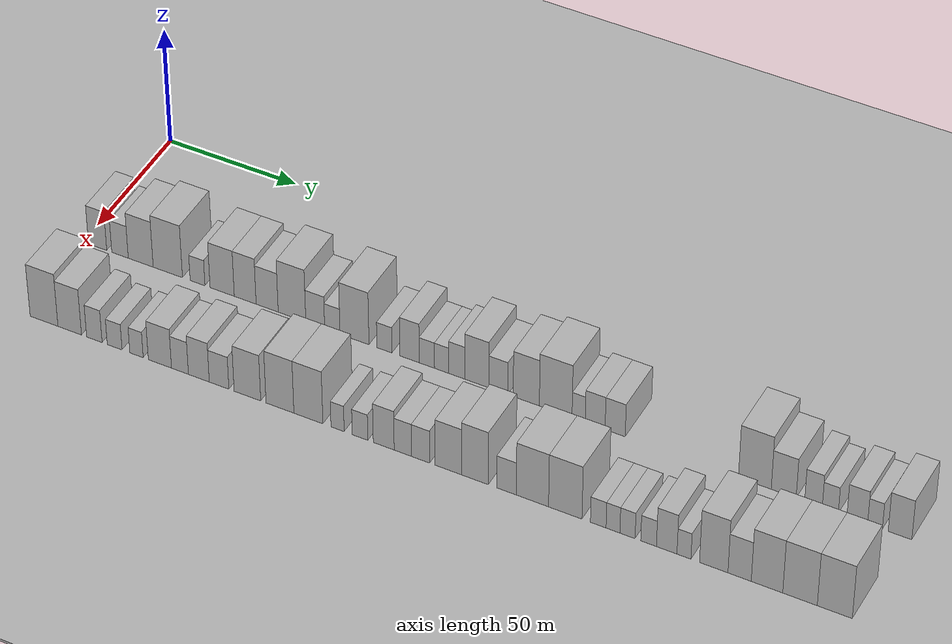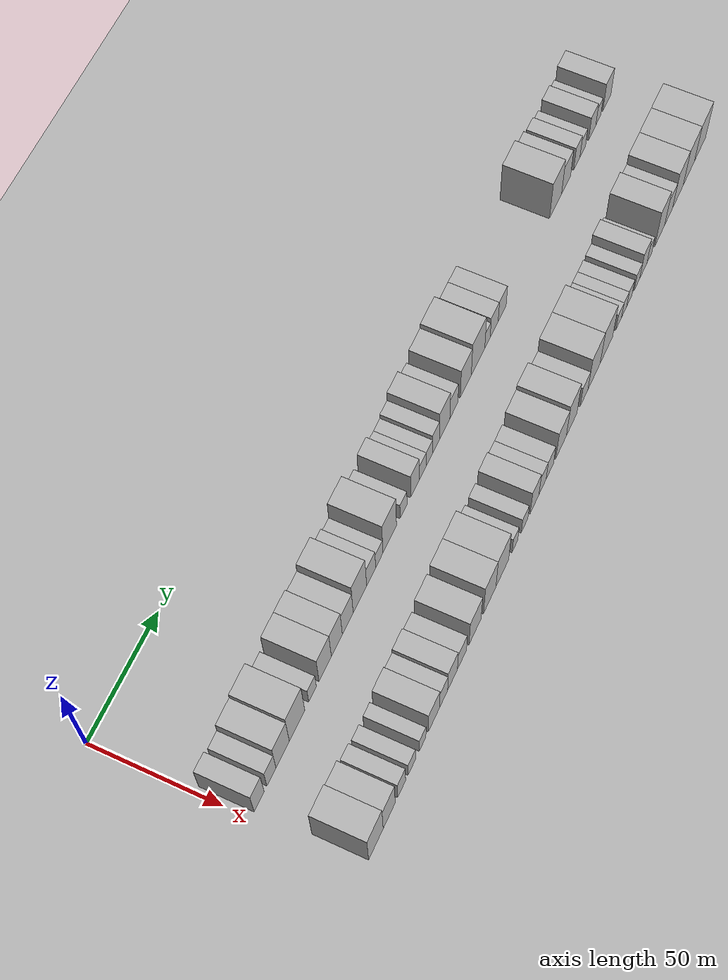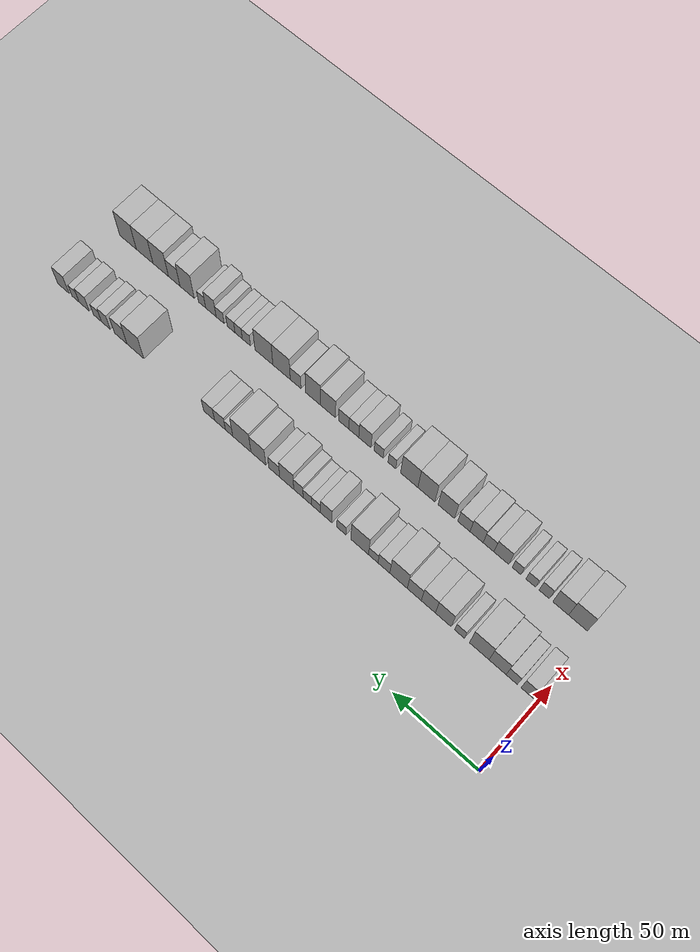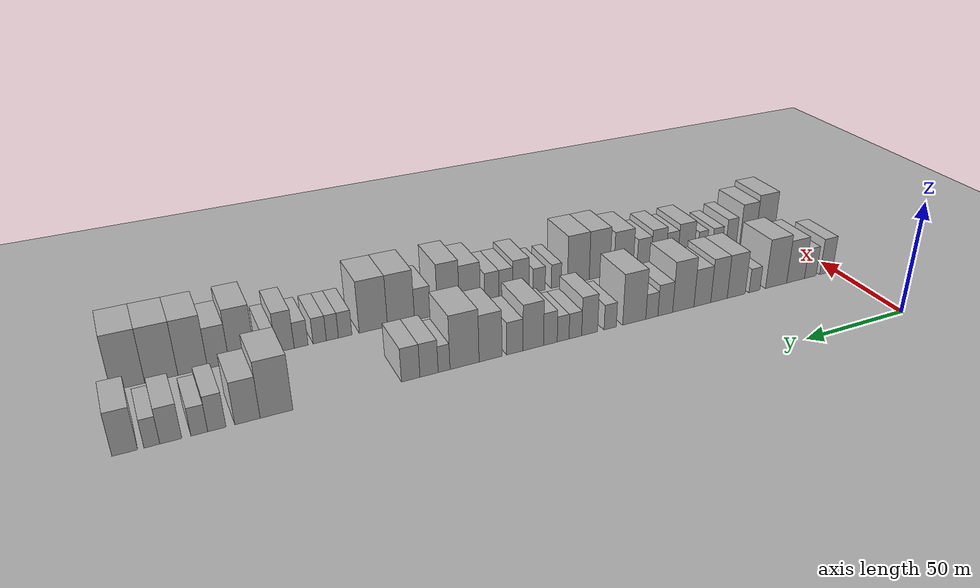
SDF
<sdf version="1.6">
 <world name="default">
  <include><name>ground_plane_1</name><uri>model://HANNAS_ground_plane</uri></include>
  <include>
   <name>ground_plane_2</name>
   <uri>model://HANNAS_ground_plane</uri>
   <pose>100 0 0  0 0 0</pose>
  </include>
  <model name="building_34">
   <static>1</static>
   <pose>50.0000 5.9675 0 0.000000 0.000000 0.000000</pose>
   <link name="link">
    <pose>0 0 9.00 0 0 0</pose>
    <collision name="collision"><geometry><box><size>20.0000 7.2417 18.0000</size></box></geometry></collision>
    <visual name="visual">
     <cast_shadows>0</cast_shadows>
     <geometry><box><size>20.0000 7.2417 18.0000</size></box></geometry>
     <material>
      <script>
       <uri>model://HANNAS_wall/materials/scripts</uri>
       <uri>model://HANNAS_wall/materials/textures</uri>
       <name>vrc/HANNAS_wall</name>
      </script>
     </material>
    </visual>
   </link>
  </model>
  <model name="building_35">
   <static>1</static>
   <pose>50.0000 14.8578 0 0.000000 0.000000 0.000000</pose>
   <link name="link">
    <pose>0 0 7.50 0 0 0</pose>
    <collision name="collision"><geometry><box><size>20.0000 6.5390 15.0000</size></box></geometry></collision>
    <visual name="visual">
     <cast_shadows>0</cast_shadows>
     <geometry><box><size>20.0000 6.5390 15.0000</size></box></geometry>
     <material>
      <script>
       <uri>model://HANNAS_wall/materials/scripts</uri>
       <uri>model://HANNAS_wall/materials/textures</uri>
       <name>vrc/HANNAS_wall</name>
      </script>
     </material>
    </visual>
   </link>
  </model>
  <model name="building_36">
   <static>1</static>
   <pose>50.0000 23.0570 0 0.000000 0.000000 0.000000</pose>
   <link name="link">
    <pose>0 0 10.50 0 0 0</pose>
    <collision name="collision"><geometry><box><size>20.0000 9.8593 21.0000</size></box></geometry></collision>
    <visual name="visual">
     <cast_shadows>0</cast_shadows>
     <geometry><box><size>20.0000 9.8593 21.0000</size></box></geometry>
     <material>
      <script>
       <uri>model://HANNAS_wall/materials/scripts</uri>
       <uri>model://HANNAS_wall/materials/textures</uri>
       <name>vrc/HANNAS_wall</name>
      </script>
     </material>
    </visual>
   </link>
  </model>
  <model name="building_37">
   <static>1</static>
   <pose>50.0000 33.7391 0 0.000000 0.000000 0.000000</pose>
   <link name="link">
    <pose>0 0 12.00 0 0 0</pose>
    <collision name="collision"><geometry><box><size>20.0000 11.5049 24.0000</size></box></geometry></collision>
    <visual name="visual">
     <cast_shadows>0</cast_shadows>
     <geometry><box><size>20.0000 11.5049 24.0000</size></box></geometry>
     <material>
      <script>
       <uri>model://HANNAS_wall/materials/scripts</uri>
       <uri>model://HANNAS_wall/materials/textures</uri>
       <name>vrc/HANNAS_wall</name>
      </script>
     </material>
    </visual>
   </link>
  </model>
  <model name="building_38">
   <static>1</static>
   <pose>50.0000 45.3837 0 0.000000 0.000000 0.000000</pose>
   <link name="link">
    <pose>0 0 6.00 0 0 0</pose>
    <collision name="collision"><geometry><box><size>20.0000 5.7844 12.0000</size></box></geometry></collision>
    <visual name="visual">
     <cast_shadows>0</cast_shadows>
     <geometry><box><size>20.0000 5.7844 12.0000</size></box></geometry>
     <material>
      <script>
       <uri>model://HANNAS_wall/materials/scripts</uri>
       <uri>model://HANNAS_wall/materials/textures</uri>
       <name>vrc/HANNAS_wall</name>
      </script>
     </material>
    </visual>
   </link>
  </model>
  <model name="building_39">
   <static>1</static>
   <pose>50.0000 54.9895 0 0.000000 0.000000 0.000000</pose>
   <link name="link">
    <pose>0 0 10.50 0 0 0</pose>
    <collision name="collision"><geometry><box><size>20.0000 9.4272 21.0000</size></box></geometry></collision>
    <visual name="visual">
     <cast_shadows>0</cast_shadows>
     <geometry><box><size>20.0000 9.4272 21.0000</size></box></geometry>
     <material>
      <script>
       <uri>model://HANNAS_wall/materials/scripts</uri>
       <uri>model://HANNAS_wall/materials/textures</uri>
       <name>vrc/HANNAS_wall</name>
      </script>
     </material>
    </visual>
   </link>
  </model>
  <model name="building_40">
   <static>1</static>
   <pose>50.0000 63.9344 0 0.000000 0.000000 0.000000</pose>
   <link name="link">
    <pose>0 0 10.50 0 0 0</pose>
    <collision name="collision"><geometry><box><size>20.0000 8.4624 21.0000</size></box></geometry></collision>
    <visual name="visual">
     <cast_shadows>0</cast_shadows>
     <geometry><box><size>20.0000 8.4624 21.0000</size></box></geometry>
     <material>
      <script>
       <uri>model://HANNAS_wall/materials/scripts</uri>
       <uri>model://HANNAS_wall/materials/textures</uri>
       <name>vrc/HANNAS_wall</name>
      </script>
     </material>
    </visual>
   </link>
  </model>
  <model name="building_41">
   <static>1</static>
   <pose>50.0000 72.4222 0 0.000000 0.000000 0.000000</pose>
   <link name="link">
    <pose>0 0 9.00 0 0 0</pose>
    <collision name="collision"><geometry><box><size>20.0000 8.5133 18.0000</size></box></geometry></collision>
    <visual name="visual">
     <cast_shadows>0</cast_shadows>
     <geometry><box><size>20.0000 8.5133 18.0000</size></box></geometry>
     <material>
      <script>
       <uri>model://HANNAS_wall/materials/scripts</uri>
       <uri>model://HANNAS_wall/materials/textures</uri>
       <name>vrc/HANNAS_wall</name>
      </script>
     </material>
    </visual>
   </link>
  </model>
  <model name="building_42">
   <static>1</static>
   <pose>50.0000 81.9835 0 0.000000 0.000000 0.000000</pose>
   <link name="link">
    <pose>0 0 12.00 0 0 0</pose>
    <collision name="collision"><geometry><box><size>20.0000 10.6092 24.0000</size></box></geometry></collision>
    <visual name="visual">
     <cast_shadows>0</cast_shadows>
     <geometry><box><size>20.0000 10.6092 24.0000</size></box></geometry>
     <material>
      <script>
       <uri>model://HANNAS_wall/materials/scripts</uri>
       <uri>model://HANNAS_wall/materials/textures</uri>
       <name>vrc/HANNAS_wall</name>
      </script>
     </material>
    </visual>
   </link>
  </model>
  <model name="building_43">
   <static>1</static>
   <pose>50.0000 90.8949 0 0.000000 0.000000 0.000000</pose>
   <link name="link">
    <pose>0 0 7.50 0 0 0</pose>
    <collision name="collision"><geometry><box><size>20.0000 7.2136 15.0000</size></box></geometry></collision>
    <visual name="visual">
     <cast_shadows>0</cast_shadows>
     <geometry><box><size>20.0000 7.2136 15.0000</size></box></geometry>
     <material>
      <script>
       <uri>model://HANNAS_wall/materials/scripts</uri>
       <uri>model://HANNAS_wall/materials/textures</uri>
       <name>vrc/HANNAS_wall</name>
      </script>
     </material>
    </visual>
   </link>
  </model>
  <model name="building_44">
   <static>1</static>
   <pose>50.0000 97.4347 0 0.000000 0.000000 0.000000</pose>
   <link name="link">
    <pose>0 0 6.00 0 0 0</pose>
    <collision name="collision"><geometry><box><size>20.0000 5.8660 12.0000</size></box></geometry></collision>
    <visual name="visual">
     <cast_shadows>0</cast_shadows>
     <geometry><box><size>20.0000 5.8660 12.0000</size></box></geometry>
     <material>
      <script>
       <uri>model://HANNAS_wall/materials/scripts</uri>
       <uri>model://HANNAS_wall/materials/textures</uri>
       <name>vrc/HANNAS_wall</name>
      </script>
     </material>
    </visual>
   </link>
  </model>
  <model name="building_45">
   <static>1</static>
   <pose>50.0000 105.8738 0 0.000000 0.000000 0.000000</pose>
   <link name="link">
    <pose>0 0 12.00 0 0 0</pose>
    <collision name="collision"><geometry><box><size>20.0000 11.0121 24.0000</size></box></geometry></collision>
    <visual name="visual">
     <cast_shadows>0</cast_shadows>
     <geometry><box><size>20.0000 11.0121 24.0000</size></box></geometry>
     <material>
      <script>
       <uri>model://HANNAS_wall/materials/scripts</uri>
       <uri>model://HANNAS_wall/materials/textures</uri>
       <name>vrc/HANNAS_wall</name>
      </script>
     </material>
    </visual>
   </link>
  </model>
  <model name="building_46">
   <static>1</static>
   <pose>50.0000 117.2272 0 0.000000 0.000000 0.000000</pose>
   <link name="link">
    <pose>0 0 6.00 0 0 0</pose>
    <collision name="collision"><geometry><box><size>20.0000 5.6948 12.0000</size></box></geometry></collision>
    <visual name="visual">
     <cast_shadows>0</cast_shadows>
     <geometry><box><size>20.0000 5.6948 12.0000</size></box></geometry>
     <material>
      <script>
       <uri>model://HANNAS_wall/materials/scripts</uri>
       <uri>model://HANNAS_wall/materials/textures</uri>
       <name>vrc/HANNAS_wall</name>
      </script>
     </material>
    </visual>
   </link>
  </model>
  <model name="building_47">
   <static>1</static>
   <pose>50.0000 126.7138 0 0.000000 0.000000 0.000000</pose>
   <link name="link">
    <pose>0 0 9.00 0 0 0</pose>
    <collision name="collision"><geometry><box><size>20.0000 7.2783 18.0000</size></box></geometry></collision>
    <visual name="visual">
     <cast_shadows>0</cast_shadows>
     <geometry><box><size>20.0000 7.2783 18.0000</size></box></geometry>
     <material>
      <script>
       <uri>model://HANNAS_wall/materials/scripts</uri>
       <uri>model://HANNAS_wall/materials/textures</uri>
       <name>vrc/HANNAS_wall</name>
      </script>
     </material>
    </visual>
   </link>
  </model>
  <model name="building_48">
   <static>1</static>
   <pose>50.0000 133.2142 0 0.000000 0.000000 0.000000</pose>
   <link name="link">
    <pose>0 0 6.00 0 0 0</pose>
    <collision name="collision"><geometry><box><size>20.0000 5.7225 12.0000</size></box></geometry></collision>
    <visual name="visual">
     <cast_shadows>0</cast_shadows>
     <geometry><box><size>20.0000 5.7225 12.0000</size></box></geometry>
     <material>
      <script>
       <uri>model://HANNAS_wall/materials/scripts</uri>
       <uri>model://HANNAS_wall/materials/textures</uri>
       <name>vrc/HANNAS_wall</name>
      </script>
     </material>
    </visual>
   </link>
  </model>
  <model name="building_49">
   <static>1</static>
   <pose>50.0000 138.7102 0 0.000000 0.000000 0.000000</pose>
   <link name="link">
    <pose>0 0 6.00 0 0 0</pose>
    <collision name="collision"><geometry><box><size>20.0000 5.2697 12.0000</size></box></geometry></collision>
    <visual name="visual">
     <cast_shadows>0</cast_shadows>
     <geometry><box><size>20.0000 5.2697 12.0000</size></box></geometry>
     <material>
      <script>
       <uri>model://HANNAS_wall/materials/scripts</uri>
       <uri>model://HANNAS_wall/materials/textures</uri>
       <name>vrc/HANNAS_wall</name>
      </script>
     </material>
    </visual>
   </link>
  </model>
  <model name="building_50">
   <static>1</static>
   <pose>50.0000 144.3458 0 0.000000 0.000000 0.000000</pose>
   <link name="link">
    <pose>0 0 7.50 0 0 0</pose>
    <collision name="collision"><geometry><box><size>20.0000 6.0015 15.0000</size></box></geometry></collision>
    <visual name="visual">
     <cast_shadows>0</cast_shadows>
     <geometry><box><size>20.0000 6.0015 15.0000</size></box></geometry>
     <material>
      <script>
       <uri>model://HANNAS_wall/materials/scripts</uri>
       <uri>model://HANNAS_wall/materials/textures</uri>
       <name>vrc/HANNAS_wall</name>
      </script>
     </material>
    </visual>
   </link>
  </model>
  <model name="building_51">
   <static>1</static>
   <pose>50.0000 151.8207 0 0.000000 0.000000 0.000000</pose>
   <link name="link">
    <pose>0 0 10.50 0 0 0</pose>
    <collision name="collision"><geometry><box><size>20.0000 8.9482 21.0000</size></box></geometry></collision>
    <visual name="visual">
     <cast_shadows>0</cast_shadows>
     <geometry><box><size>20.0000 8.9482 21.0000</size></box></geometry>
     <material>
      <script>
       <uri>model://HANNAS_wall/materials/scripts</uri>
       <uri>model://HANNAS_wall/materials/textures</uri>
       <name>vrc/HANNAS_wall</name>
      </script>
     </material>
    </visual>
   </link>
  </model>
  <model name="building_52">
   <static>1</static>
   <pose>50.0000 159.8206 0 0.000000 0.000000 0.000000</pose>
   <link name="link">
    <pose>0 0 7.50 0 0 0</pose>
    <collision name="collision"><geometry><box><size>20.0000 7.0516 15.0000</size></box></geometry></collision>
    <visual name="visual">
     <cast_shadows>0</cast_shadows>
     <geometry><box><size>20.0000 7.0516 15.0000</size></box></geometry>
     <material>
      <script>
       <uri>model://HANNAS_wall/materials/scripts</uri>
       <uri>model://HANNAS_wall/materials/textures</uri>
       <name>vrc/HANNAS_wall</name>
      </script>
     </material>
    </visual>
   </link>
  </model>
  <model name="building_53">
   <static>1</static>
   <pose>50.0000 170.1616 0 0.000000 0.000000 0.000000</pose>
   <link name="link">
    <pose>0 0 10.50 0 0 0</pose>
    <collision name="collision"><geometry><box><size>20.0000 9.6304 21.0000</size></box></geometry></collision>
    <visual name="visual">
     <cast_shadows>0</cast_shadows>
     <geometry><box><size>20.0000 9.6304 21.0000</size></box></geometry>
     <material>
      <script>
       <uri>model://HANNAS_wall/materials/scripts</uri>
       <uri>model://HANNAS_wall/materials/textures</uri>
       <name>vrc/HANNAS_wall</name>
      </script>
     </material>
    </visual>
   </link>
  </model>
  <model name="building_54">
   <static>1</static>
   <pose>50.0000 180.9630 0 0.000000 0.000000 0.000000</pose>
   <link name="link">
    <pose>0 0 12.00 0 0 0</pose>
    <collision name="collision"><geometry><box><size>20.0000 11.9724 24.0000</size></box></geometry></collision>
    <visual name="visual">
     <cast_shadows>0</cast_shadows>
     <geometry><box><size>20.0000 11.9724 24.0000</size></box></geometry>
     <material>
      <script>
       <uri>model://HANNAS_wall/materials/scripts</uri>
       <uri>model://HANNAS_wall/materials/textures</uri>
       <name>vrc/HANNAS_wall</name>
      </script>
     </material>
    </visual>
   </link>
  </model>
  <model name="building_55">
   <static>1</static>
   <pose>50.0000 189.3568 0 0.000000 0.000000 0.000000</pose>
   <link name="link">
    <pose>0 0 6.00 0 0 0</pose>
    <collision name="collision"><geometry><box><size>20.0000 4.8152 12.0000</size></box></geometry></collision>
    <visual name="visual">
     <cast_shadows>0</cast_shadows>
     <geometry><box><size>20.0000 4.8152 12.0000</size></box></geometry>
     <material>
      <script>
       <uri>model://HANNAS_wall/materials/scripts</uri>
       <uri>model://HANNAS_wall/materials/textures</uri>
       <name>vrc/HANNAS_wall</name>
      </script>
     </material>
    </visual>
   </link>
  </model>
  <model name="building_56">
   <static>1</static>
   <pose>50.0000 195.3856 0 0.000000 0.000000 0.000000</pose>
   <link name="link">
    <pose>0 0 7.50 0 0 0</pose>
    <collision name="collision"><geometry><box><size>20.0000 7.2424 15.0000</size></box></geometry></collision>
    <visual name="visual">
     <cast_shadows>0</cast_shadows>
     <geometry><box><size>20.0000 7.2424 15.0000</size></box></geometry>
     <material>
      <script>
       <uri>model://HANNAS_wall/materials/scripts</uri>
       <uri>model://HANNAS_wall/materials/textures</uri>
       <name>vrc/HANNAS_wall</name>
      </script>
     </material>
    </visual>
   </link>
  </model>
  <model name="building_57">
   <static>1</static>
   <pose>50.0000 202.6606 0 0.000000 0.000000 0.000000</pose>
   <link name="link">
    <pose>0 0 7.50 0 0 0</pose>
    <collision name="collision"><geometry><box><size>20.0000 7.3075 15.0000</size></box></geometry></collision>
    <visual name="visual">
     <cast_shadows>0</cast_shadows>
     <geometry><box><size>20.0000 7.3075 15.0000</size></box></geometry>
     <material>
      <script>
       <uri>model://HANNAS_wall/materials/scripts</uri>
       <uri>model://HANNAS_wall/materials/textures</uri>
       <name>vrc/HANNAS_wall</name>
      </script>
     </material>
    </visual>
   </link>
  </model>
  <model name="building_58">
   <static>1</static>
   <pose>50.0000 252.7481 0 0.000000 0.000000 0.000000</pose>
   <link name="link">
    <pose>0 0 12.00 0 0 0</pose>
    <collision name="collision"><geometry><box><size>20.0000 11.6225 24.0000</size></box></geometry></collision>
    <visual name="visual">
     <cast_shadows>0</cast_shadows>
     <geometry><box><size>20.0000 11.6225 24.0000</size></box></geometry>
     <material>
      <script>
       <uri>model://HANNAS_wall/materials/scripts</uri>
       <uri>model://HANNAS_wall/materials/textures</uri>
       <name>vrc/HANNAS_wall</name>
      </script>
     </material>
    </visual>
   </link>
  </model>
  <model name="building_59">
   <static>1</static>
   <pose>50.0000 262.9503 0 0.000000 0.000000 0.000000</pose>
   <link name="link">
    <pose>0 0 9.00 0 0 0</pose>
    <collision name="collision"><geometry><box><size>20.0000 8.7817 18.0000</size></box></geometry></collision>
    <visual name="visual">
     <cast_shadows>0</cast_shadows>
     <geometry><box><size>20.0000 8.7817 18.0000</size></box></geometry>
     <material>
      <script>
       <uri>model://HANNAS_wall/materials/scripts</uri>
       <uri>model://HANNAS_wall/materials/textures</uri>
       <name>vrc/HANNAS_wall</name>
      </script>
     </material>
    </visual>
   </link>
  </model>
  <model name="building_60">
   <static>1</static>
   <pose>50.0000 273.4290 0 0.000000 0.000000 0.000000</pose>
   <link name="link">
    <pose>0 0 7.50 0 0 0</pose>
    <collision name="collision"><geometry><box><size>20.0000 6.1758 15.0000</size></box></geometry></collision>
    <visual name="visual">
     <cast_shadows>0</cast_shadows>
     <geometry><box><size>20.0000 6.1758 15.0000</size></box></geometry>
     <material>
      <script>
       <uri>model://HANNAS_wall/materials/scripts</uri>
       <uri>model://HANNAS_wall/materials/textures</uri>
       <name>vrc/HANNAS_wall</name>
      </script>
     </material>
    </visual>
   </link>
  </model>
  <model name="building_61">
   <static>1</static>
   <pose>50.0000 279.3293 0 0.000000 0.000000 0.000000</pose>
   <link name="link">
    <pose>0 0 6.00 0 0 0</pose>
    <collision name="collision"><geometry><box><size>20.0000 5.6248 12.0000</size></box></geometry></collision>
    <visual name="visual">
     <cast_shadows>0</cast_shadows>
     <geometry><box><size>20.0000 5.6248 12.0000</size></box></geometry>
     <material>
      <script>
       <uri>model://HANNAS_wall/materials/scripts</uri>
       <uri>model://HANNAS_wall/materials/textures</uri>
       <name>vrc/HANNAS_wall</name>
      </script>
     </material>
    </visual>
   </link>
  </model>
  <model name="building_62">
   <static>1</static>
   <pose>50.0000 288.7434 0 0.000000 0.000000 0.000000</pose>
   <link name="link">
    <pose>0 0 7.50 0 0 0</pose>
    <collision name="collision"><geometry><box><size>20.0000 7.2033 15.0000</size></box></geometry></collision>
    <visual name="visual">
     <cast_shadows>0</cast_shadows>
     <geometry><box><size>20.0000 7.2033 15.0000</size></box></geometry>
     <material>
      <script>
       <uri>model://HANNAS_wall/materials/scripts</uri>
       <uri>model://HANNAS_wall/materials/textures</uri>
       <name>vrc/HANNAS_wall</name>
      </script>
     </material>
    </visual>
   </link>
  </model>
  <model name="building_63">
   <static>1</static>
   <pose>50.0000 294.9023 0 0.000000 0.000000 0.000000</pose>
   <link name="link">
    <pose>0 0 6.00 0 0 0</pose>
    <collision name="collision"><geometry><box><size>20.0000 5.1144 12.0000</size></box></geometry></collision>
    <visual name="visual">
     <cast_shadows>0</cast_shadows>
     <geometry><box><size>20.0000 5.1144 12.0000</size></box></geometry>
     <material>
      <script>
       <uri>model://HANNAS_wall/materials/scripts</uri>
       <uri>model://HANNAS_wall/materials/textures</uri>
       <name>vrc/HANNAS_wall</name>
      </script>
     </material>
    </visual>
   </link>
  </model>
  <model name="building_64">
   <static>1</static>
   <pose>50.0000 303.5446 0 0.000000 0.000000 0.000000</pose>
   <link name="link">
    <pose>0 0 9.00 0 0 0</pose>
    <collision name="collision"><geometry><box><size>20.0000 8.1702 18.0000</size></box></geometry></collision>
    <visual name="visual">
     <cast_shadows>0</cast_shadows>
     <geometry><box><size>20.0000 8.1702 18.0000</size></box></geometry>
     <material>
      <script>
       <uri>model://HANNAS_wall/materials/scripts</uri>
       <uri>model://HANNAS_wall/materials/textures</uri>
       <name>vrc/HANNAS_wall</name>
      </script>
     </material>
    </visual>
   </link>
  </model>
  <model name="building_97">
   <static>1</static>
   <pose>90.0000 9.0824 0 0.000000 0.000000 0.000000</pose>
   <link name="link">
    <pose>0 0 12.00 0 0 0</pose>
    <collision name="collision"><geometry><box><size>20.0000 10.9043 24.0000</size></box></geometry></collision>
    <visual name="visual">
     <cast_shadows>0</cast_shadows>
     <geometry><box><size>20.0000 10.9043 24.0000</size></box></geometry>
     <material>
      <script>
       <uri>model://HANNAS_wall/materials/scripts</uri>
       <uri>model://HANNAS_wall/materials/textures</uri>
       <name>vrc/HANNAS_wall</name>
      </script>
     </material>
    </visual>
   </link>
  </model>
  <model name="building_98">
   <static>1</static>
   <pose>90.0000 19.1319 0 0.000000 0.000000 0.000000</pose>
   <link name="link">
    <pose>0 0 10.50 0 0 0</pose>
    <collision name="collision"><geometry><box><size>20.0000 9.1947 21.0000</size></box></geometry></collision>
    <visual name="visual">
     <cast_shadows>0</cast_shadows>
     <geometry><box><size>20.0000 9.1947 21.0000</size></box></geometry>
     <material>
      <script>
       <uri>model://HANNAS_wall/materials/scripts</uri>
       <uri>model://HANNAS_wall/materials/textures</uri>
       <name>vrc/HANNAS_wall</name>
      </script>
     </material>
    </visual>
   </link>
  </model>
  <model name="building_99">
   <static>1</static>
   <pose>90.0000 28.7344 0 0.000000 0.000000 0.000000</pose>
   <link name="link">
    <pose>0 0 7.50 0 0 0</pose>
    <collision name="collision"><geometry><box><size>20.0000 6.0102 15.0000</size></box></geometry></collision>
    <visual name="visual">
     <cast_shadows>0</cast_shadows>
     <geometry><box><size>20.0000 6.0102 15.0000</size></box></geometry>
     <material>
      <script>
       <uri>model://HANNAS_wall/materials/scripts</uri>
       <uri>model://HANNAS_wall/materials/textures</uri>
       <name>vrc/HANNAS_wall</name>
      </script>
     </material>
    </visual>
   </link>
  </model>
  <model name="building_100">
   <static>1</static>
   <pose>90.0000 36.6104 0 0.000000 0.000000 0.000000</pose>
   <link name="link">
    <pose>0 0 6.00 0 0 0</pose>
    <collision name="collision"><geometry><box><size>20.0000 5.7419 12.0000</size></box></geometry></collision>
    <visual name="visual">
     <cast_shadows>0</cast_shadows>
     <geometry><box><size>20.0000 5.7419 12.0000</size></box></geometry>
     <material>
      <script>
       <uri>model://HANNAS_wall/materials/scripts</uri>
       <uri>model://HANNAS_wall/materials/textures</uri>
       <name>vrc/HANNAS_wall</name>
      </script>
     </material>
    </visual>
   </link>
  </model>
  <model name="building_101">
   <static>1</static>
   <pose>90.0000 45.0587 0 0.000000 0.000000 0.000000</pose>
   <link name="link">
    <pose>0 0 6.00 0 0 0</pose>
    <collision name="collision"><geometry><box><size>20.0000 5.1548 12.0000</size></box></geometry></collision>
    <visual name="visual">
     <cast_shadows>0</cast_shadows>
     <geometry><box><size>20.0000 5.1548 12.0000</size></box></geometry>
     <material>
      <script>
       <uri>model://HANNAS_wall/materials/scripts</uri>
       <uri>model://HANNAS_wall/materials/textures</uri>
       <name>vrc/HANNAS_wall</name>
      </script>
     </material>
    </visual>
   </link>
  </model>
  <model name="building_102">
   <static>1</static>
   <pose>90.0000 54.0818 0 0.000000 0.000000 0.000000</pose>
   <link name="link">
    <pose>0 0 9.00 0 0 0</pose>
    <collision name="collision"><geometry><box><size>20.0000 8.8914 18.0000</size></box></geometry></collision>
    <visual name="visual">
     <cast_shadows>0</cast_shadows>
     <geometry><box><size>20.0000 8.8914 18.0000</size></box></geometry>
     <material>
      <script>
       <uri>model://HANNAS_wall/materials/scripts</uri>
       <uri>model://HANNAS_wall/materials/textures</uri>
       <name>vrc/HANNAS_wall</name>
      </script>
     </material>
    </visual>
   </link>
  </model>
  <model name="building_103">
   <static>1</static>
   <pose>90.0000 61.7717 0 0.000000 0.000000 0.000000</pose>
   <link name="link">
    <pose>0 0 7.50 0 0 0</pose>
    <collision name="collision"><geometry><box><size>20.0000 6.4884 15.0000</size></box></geometry></collision>
    <visual name="visual">
     <cast_shadows>0</cast_shadows>
     <geometry><box><size>20.0000 6.4884 15.0000</size></box></geometry>
     <material>
      <script>
       <uri>model://HANNAS_wall/materials/scripts</uri>
       <uri>model://HANNAS_wall/materials/textures</uri>
       <name>vrc/HANNAS_wall</name>
      </script>
     </material>
    </visual>
   </link>
  </model>
  <model name="building_104">
   <static>1</static>
   <pose>90.0000 68.9917 0 0.000000 0.000000 0.000000</pose>
   <link name="link">
    <pose>0 0 9.00 0 0 0</pose>
    <collision name="collision"><geometry><box><size>20.0000 7.9517 18.0000</size></box></geometry></collision>
    <visual name="visual">
     <cast_shadows>0</cast_shadows>
     <geometry><box><size>20.0000 7.9517 18.0000</size></box></geometry>
     <material>
      <script>
       <uri>model://HANNAS_wall/materials/scripts</uri>
       <uri>model://HANNAS_wall/materials/textures</uri>
       <name>vrc/HANNAS_wall</name>
      </script>
     </material>
    </visual>
   </link>
  </model>
  <model name="building_105">
   <static>1</static>
   <pose>90.0000 76.6968 0 0.000000 0.000000 0.000000</pose>
   <link name="link">
    <pose>0 0 7.50 0 0 0</pose>
    <collision name="collision"><geometry><box><size>20.0000 7.4584 15.0000</size></box></geometry></collision>
    <visual name="visual">
     <cast_shadows>0</cast_shadows>
     <geometry><box><size>20.0000 7.4584 15.0000</size></box></geometry>
     <material>
      <script>
       <uri>model://HANNAS_wall/materials/scripts</uri>
       <uri>model://HANNAS_wall/materials/textures</uri>
       <name>vrc/HANNAS_wall</name>
      </script>
     </material>
    </visual>
   </link>
  </model>
  <model name="building_106">
   <static>1</static>
   <pose>90.0000 87.4504 0 0.000000 0.000000 0.000000</pose>
   <link name="link">
    <pose>0 0 10.50 0 0 0</pose>
    <collision name="collision"><geometry><box><size>20.0000 10.0489 21.0000</size></box></geometry></collision>
    <visual name="visual">
     <cast_shadows>0</cast_shadows>
     <geometry><box><size>20.0000 10.0489 21.0000</size></box></geometry>
     <material>
      <script>
       <uri>model://HANNAS_wall/materials/scripts</uri>
       <uri>model://HANNAS_wall/materials/textures</uri>
       <name>vrc/HANNAS_wall</name>
      </script>
     </material>
    </visual>
   </link>
  </model>
  <model name="building_107">
   <static>1</static>
   <pose>90.0000 99.7210 0 0.000000 0.000000 0.000000</pose>
   <link name="link">
    <pose>0 0 12.00 0 0 0</pose>
    <collision name="collision"><geometry><box><size>20.0000 10.4923 24.0000</size></box></geometry></collision>
    <visual name="visual">
     <cast_shadows>0</cast_shadows>
     <geometry><box><size>20.0000 10.4923 24.0000</size></box></geometry>
     <material>
      <script>
       <uri>model://HANNAS_wall/materials/scripts</uri>
       <uri>model://HANNAS_wall/materials/textures</uri>
       <name>vrc/HANNAS_wall</name>
      </script>
     </material>
    </visual>
   </link>
  </model>
  <model name="building_108">
   <static>1</static>
   <pose>90.0000 110.3941 0 0.000000 0.000000 0.000000</pose>
   <link name="link">
    <pose>0 0 12.00 0 0 0</pose>
    <collision name="collision"><geometry><box><size>20.0000 10.8539 24.0000</size></box></geometry></collision>
    <visual name="visual">
     <cast_shadows>0</cast_shadows>
     <geometry><box><size>20.0000 10.8539 24.0000</size></box></geometry>
     <material>
      <script>
       <uri>model://HANNAS_wall/materials/scripts</uri>
       <uri>model://HANNAS_wall/materials/textures</uri>
       <name>vrc/HANNAS_wall</name>
      </script>
     </material>
    </visual>
   </link>
  </model>
  <model name="building_109">
   <static>1</static>
   <pose>90.0000 121.2791 0 0.000000 0.000000 0.000000</pose>
   <link name="link">
    <pose>0 0 6.00 0 0 0</pose>
    <collision name="collision"><geometry><box><size>20.0000 4.9161 12.0000</size></box></geometry></collision>
    <visual name="visual">
     <cast_shadows>0</cast_shadows>
     <geometry><box><size>20.0000 4.9161 12.0000</size></box></geometry>
     <material>
      <script>
       <uri>model://HANNAS_wall/materials/scripts</uri>
       <uri>model://HANNAS_wall/materials/textures</uri>
       <name>vrc/HANNAS_wall</name>
      </script>
     </material>
    </visual>
   </link>
  </model>
  <model name="building_110">
   <static>1</static>
   <pose>90.0000 129.6373 0 0.000000 0.000000 0.000000</pose>
   <link name="link">
    <pose>0 0 6.00 0 0 0</pose>
    <collision name="collision"><geometry><box><size>20.0000 5.8004 12.0000</size></box></geometry></collision>
    <visual name="visual">
     <cast_shadows>0</cast_shadows>
     <geometry><box><size>20.0000 5.8004 12.0000</size></box></geometry>
     <material>
      <script>
       <uri>model://HANNAS_wall/materials/scripts</uri>
       <uri>model://HANNAS_wall/materials/textures</uri>
       <name>vrc/HANNAS_wall</name>
      </script>
     </material>
    </visual>
   </link>
  </model>
  <model name="building_111">
   <static>1</static>
   <pose>90.0000 138.4008 0 0.000000 0.000000 0.000000</pose>
   <link name="link">
    <pose>0 0 9.00 0 0 0</pose>
    <collision name="collision"><geometry><box><size>20.0000 7.7266 18.0000</size></box></geometry></collision>
    <visual name="visual">
     <cast_shadows>0</cast_shadows>
     <geometry><box><size>20.0000 7.7266 18.0000</size></box></geometry>
     <material>
      <script>
       <uri>model://HANNAS_wall/materials/scripts</uri>
       <uri>model://HANNAS_wall/materials/textures</uri>
       <name>vrc/HANNAS_wall</name>
      </script>
     </material>
    </visual>
   </link>
  </model>
  <model name="building_112">
   <static>1</static>
   <pose>90.0000 145.4460 0 0.000000 0.000000 0.000000</pose>
   <link name="link">
    <pose>0 0 7.50 0 0 0</pose>
    <collision name="collision"><geometry><box><size>20.0000 6.3637 15.0000</size></box></geometry></collision>
    <visual name="visual">
     <cast_shadows>0</cast_shadows>
     <geometry><box><size>20.0000 6.3637 15.0000</size></box></geometry>
     <material>
      <script>
       <uri>model://HANNAS_wall/materials/scripts</uri>
       <uri>model://HANNAS_wall/materials/textures</uri>
       <name>vrc/HANNAS_wall</name>
      </script>
     </material>
    </visual>
   </link>
  </model>
  <model name="building_113">
   <static>1</static>
   <pose>90.0000 151.9613 0 0.000000 0.000000 0.000000</pose>
   <link name="link">
    <pose>0 0 7.50 0 0 0</pose>
    <collision name="collision"><geometry><box><size>20.0000 6.6670 15.0000</size></box></geometry></collision>
    <visual name="visual">
     <cast_shadows>0</cast_shadows>
     <geometry><box><size>20.0000 6.6670 15.0000</size></box></geometry>
     <material>
      <script>
       <uri>model://HANNAS_wall/materials/scripts</uri>
       <uri>model://HANNAS_wall/materials/textures</uri>
       <name>vrc/HANNAS_wall</name>
      </script>
     </material>
    </visual>
   </link>
  </model>
  <model name="building_114">
   <static>1</static>
   <pose>90.0000 162.1023 0 0.000000 0.000000 0.000000</pose>
   <link name="link">
    <pose>0 0 10.50 0 0 0</pose>
    <collision name="collision"><geometry><box><size>20.0000 9.6148 21.0000</size></box></geometry></collision>
    <visual name="visual">
     <cast_shadows>0</cast_shadows>
     <geometry><box><size>20.0000 9.6148 21.0000</size></box></geometry>
     <material>
      <script>
       <uri>model://HANNAS_wall/materials/scripts</uri>
       <uri>model://HANNAS_wall/materials/textures</uri>
       <name>vrc/HANNAS_wall</name>
      </script>
     </material>
    </visual>
   </link>
  </model>
  <model name="building_115">
   <static>1</static>
   <pose>90.0000 171.7916 0 0.000000 0.000000 0.000000</pose>
   <link name="link">
    <pose>0 0 12.00 0 0 0</pose>
    <collision name="collision"><geometry><box><size>20.0000 9.7640 24.0000</size></box></geometry></collision>
    <visual name="visual">
     <cast_shadows>0</cast_shadows>
     <geometry><box><size>20.0000 9.7640 24.0000</size></box></geometry>
     <material>
      <script>
       <uri>model://HANNAS_wall/materials/scripts</uri>
       <uri>model://HANNAS_wall/materials/textures</uri>
       <name>vrc/HANNAS_wall</name>
      </script>
     </material>
    </visual>
   </link>
  </model>
  <model name="building_116">
   <static>1</static>
   <pose>90.0000 183.2256 0 0.000000 0.000000 0.000000</pose>
   <link name="link">
    <pose>0 0 7.50 0 0 0</pose>
    <collision name="collision"><geometry><box><size>20.0000 7.1039 15.0000</size></box></geometry></collision>
    <visual name="visual">
     <cast_shadows>0</cast_shadows>
     <geometry><box><size>20.0000 7.1039 15.0000</size></box></geometry>
     <material>
      <script>
       <uri>model://HANNAS_wall/materials/scripts</uri>
       <uri>model://HANNAS_wall/materials/textures</uri>
       <name>vrc/HANNAS_wall</name>
      </script>
     </material>
    </visual>
   </link>
  </model>
  <model name="building_117">
   <static>1</static>
   <pose>90.0000 192.5765 0 0.000000 0.000000 0.000000</pose>
   <link name="link">
    <pose>0 0 12.00 0 0 0</pose>
    <collision name="collision"><geometry><box><size>20.0000 11.5979 24.0000</size></box></geometry></collision>
    <visual name="visual">
     <cast_shadows>0</cast_shadows>
     <geometry><box><size>20.0000 11.5979 24.0000</size></box></geometry>
     <material>
      <script>
       <uri>model://HANNAS_wall/materials/scripts</uri>
       <uri>model://HANNAS_wall/materials/textures</uri>
       <name>vrc/HANNAS_wall</name>
      </script>
     </material>
    </visual>
   </link>
  </model>
  <model name="building_118">
   <static>1</static>
   <pose>90.0000 204.3540 0 0.000000 0.000000 0.000000</pose>
   <link name="link">
    <pose>0 0 12.00 0 0 0</pose>
    <collision name="collision"><geometry><box><size>20.0000 11.9572 24.0000</size></box></geometry></collision>
    <visual name="visual">
     <cast_shadows>0</cast_shadows>
     <geometry><box><size>20.0000 11.9572 24.0000</size></box></geometry>
     <material>
      <script>
       <uri>model://HANNAS_wall/materials/scripts</uri>
       <uri>model://HANNAS_wall/materials/textures</uri>
       <name>vrc/HANNAS_wall</name>
      </script>
     </material>
    </visual>
   </link>
  </model>
  <model name="building_119">
   <static>1</static>
   <pose>90.0000 216.1192 0 0.000000 0.000000 0.000000</pose>
   <link name="link">
    <pose>0 0 6.00 0 0 0</pose>
    <collision name="collision"><geometry><box><size>20.0000 5.5731 12.0000</size></box></geometry></collision>
    <visual name="visual">
     <cast_shadows>0</cast_shadows>
     <geometry><box><size>20.0000 5.5731 12.0000</size></box></geometry>
     <material>
      <script>
       <uri>model://HANNAS_wall/materials/scripts</uri>
       <uri>model://HANNAS_wall/materials/textures</uri>
       <name>vrc/HANNAS_wall</name>
      </script>
     </material>
    </visual>
   </link>
  </model>
  <model name="building_120">
   <static>1</static>
   <pose>90.0000 221.3527 0 0.000000 0.000000 0.000000</pose>
   <link name="link">
    <pose>0 0 6.00 0 0 0</pose>
    <collision name="collision"><geometry><box><size>20.0000 4.8938 12.0000</size></box></geometry></collision>
    <visual name="visual">
     <cast_shadows>0</cast_shadows>
     <geometry><box><size>20.0000 4.8938 12.0000</size></box></geometry>
     <material>
      <script>
       <uri>model://HANNAS_wall/materials/scripts</uri>
       <uri>model://HANNAS_wall/materials/textures</uri>
       <name>vrc/HANNAS_wall</name>
      </script>
     </material>
    </visual>
   </link>
  </model>
  <model name="building_121">
   <static>1</static>
   <pose>90.0000 226.4874 0 0.000000 0.000000 0.000000</pose>
   <link name="link">
    <pose>0 0 6.00 0 0 0</pose>
    <collision name="collision"><geometry><box><size>20.0000 5.3755 12.0000</size></box></geometry></collision>
    <visual name="visual">
     <cast_shadows>0</cast_shadows>
     <geometry><box><size>20.0000 5.3755 12.0000</size></box></geometry>
     <material>
      <script>
       <uri>model://HANNAS_wall/materials/scripts</uri>
       <uri>model://HANNAS_wall/materials/textures</uri>
       <name>vrc/HANNAS_wall</name>
      </script>
     </material>
    </visual>
   </link>
  </model>
  <model name="building_122">
   <static>1</static>
   <pose>90.0000 233.9372 0 0.000000 0.000000 0.000000</pose>
   <link name="link">
    <pose>0 0 6.00 0 0 0</pose>
    <collision name="collision"><geometry><box><size>20.0000 5.5242 12.0000</size></box></geometry></collision>
    <visual name="visual">
     <cast_shadows>0</cast_shadows>
     <geometry><box><size>20.0000 5.5242 12.0000</size></box></geometry>
     <material>
      <script>
       <uri>model://HANNAS_wall/materials/scripts</uri>
       <uri>model://HANNAS_wall/materials/textures</uri>
       <name>vrc/HANNAS_wall</name>
      </script>
     </material>
    </visual>
   </link>
  </model>
  <model name="building_123">
   <static>1</static>
   <pose>90.0000 240.3087 0 0.000000 0.000000 0.000000</pose>
   <link name="link">
    <pose>0 0 9.00 0 0 0</pose>
    <collision name="collision"><geometry><box><size>20.0000 7.2188 18.0000</size></box></geometry></collision>
    <visual name="visual">
     <cast_shadows>0</cast_shadows>
     <geometry><box><size>20.0000 7.2188 18.0000</size></box></geometry>
     <material>
      <script>
       <uri>model://HANNAS_wall/materials/scripts</uri>
       <uri>model://HANNAS_wall/materials/textures</uri>
       <name>vrc/HANNAS_wall</name>
      </script>
     </material>
    </visual>
   </link>
  </model>
  <model name="building_124">
   <static>1</static>
   <pose>90.0000 246.3693 0 0.000000 0.000000 0.000000</pose>
   <link name="link">
    <pose>0 0 6.00 0 0 0</pose>
    <collision name="collision"><geometry><box><size>20.0000 4.9024 12.0000</size></box></geometry></collision>
    <visual name="visual">
     <cast_shadows>0</cast_shadows>
     <geometry><box><size>20.0000 4.9024 12.0000</size></box></geometry>
     <material>
      <script>
       <uri>model://HANNAS_wall/materials/scripts</uri>
       <uri>model://HANNAS_wall/materials/textures</uri>
       <name>vrc/HANNAS_wall</name>
      </script>
     </material>
    </visual>
   </link>
  </model>
  <model name="building_125">
   <static>1</static>
   <pose>90.0000 256.7768 0 0.000000 0.000000 0.000000</pose>
   <link name="link">
    <pose>0 0 12.00 0 0 0</pose>
    <collision name="collision"><geometry><box><size>20.0000 9.9126 24.0000</size></box></geometry></collision>
    <visual name="visual">
     <cast_shadows>0</cast_shadows>
     <geometry><box><size>20.0000 9.9126 24.0000</size></box></geometry>
     <material>
      <script>
       <uri>model://HANNAS_wall/materials/scripts</uri>
       <uri>model://HANNAS_wall/materials/textures</uri>
       <name>vrc/HANNAS_wall</name>
      </script>
     </material>
    </visual>
   </link>
  </model>
  <model name="building_126">
   <static>1</static>
   <pose>90.0000 265.7720 0 0.000000 0.000000 0.000000</pose>
   <link name="link">
    <pose>0 0 9.00 0 0 0</pose>
    <collision name="collision"><geometry><box><size>20.0000 8.0778 18.0000</size></box></geometry></collision>
    <visual name="visual">
     <cast_shadows>0</cast_shadows>
     <geometry><box><size>20.0000 8.0778 18.0000</size></box></geometry>
     <material>
      <script>
       <uri>model://HANNAS_wall/materials/scripts</uri>
       <uri>model://HANNAS_wall/materials/textures</uri>
       <name>vrc/HANNAS_wall</name>
      </script>
     </material>
    </visual>
   </link>
  </model>
  <model name="building_127">
   <static>1</static>
   <pose>90.0000 275.2547 0 0.000000 0.000000 0.000000</pose>
   <link name="link">
    <pose>0 0 12.00 0 0 0</pose>
    <collision name="collision"><geometry><box><size>20.0000 10.8877 24.0000</size></box></geometry></collision>
    <visual name="visual">
     <cast_shadows>0</cast_shadows>
     <geometry><box><size>20.0000 10.8877 24.0000</size></box></geometry>
     <material>
      <script>
       <uri>model://HANNAS_wall/materials/scripts</uri>
       <uri>model://HANNAS_wall/materials/textures</uri>
       <name>vrc/HANNAS_wall</name>
      </script>
     </material>
    </visual>
   </link>
  </model>
  <model name="building_128">
   <static>1</static>
   <pose>90.0000 286.6262 0 0.000000 0.000000 0.000000</pose>
   <link name="link">
    <pose>0 0 12.00 0 0 0</pose>
    <collision name="collision"><geometry><box><size>20.0000 11.8554 24.0000</size></box></geometry></collision>
    <visual name="visual">
     <cast_shadows>0</cast_shadows>
     <geometry><box><size>20.0000 11.8554 24.0000</size></box></geometry>
     <material>
      <script>
       <uri>model://HANNAS_wall/materials/scripts</uri>
       <uri>model://HANNAS_wall/materials/textures</uri>
       <name>vrc/HANNAS_wall</name>
      </script>
     </material>
    </visual>
   </link>
  </model>
  <model name="building_129">
   <static>1</static>
   <pose>90.0000 298.5362 0 0.000000 0.000000 0.000000</pose>
   <link name="link">
    <pose>0 0 12.00 0 0 0</pose>
    <collision name="collision"><geometry><box><size>20.0000 11.9646 24.0000</size></box></geometry></collision>
    <visual name="visual">
     <cast_shadows>0</cast_shadows>
     <geometry><box><size>20.0000 11.9646 24.0000</size></box></geometry>
     <material>
      <script>
       <uri>model://HANNAS_wall/materials/scripts</uri>
       <uri>model://HANNAS_wall/materials/textures</uri>
       <name>vrc/HANNAS_wall</name>
      </script>
     </material>
    </visual>
   </link>
  </model>
 </world>
</sdf>
